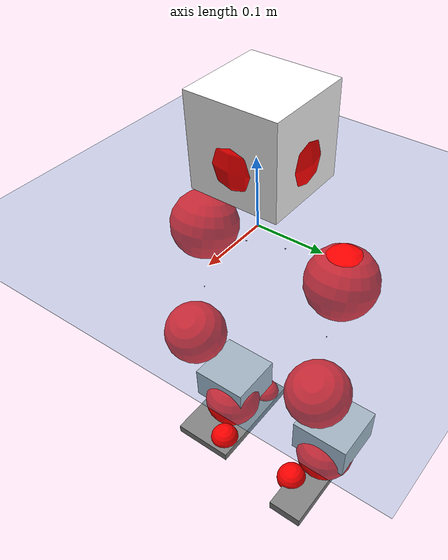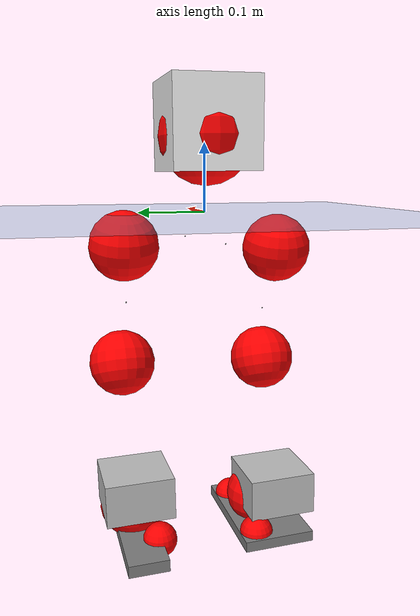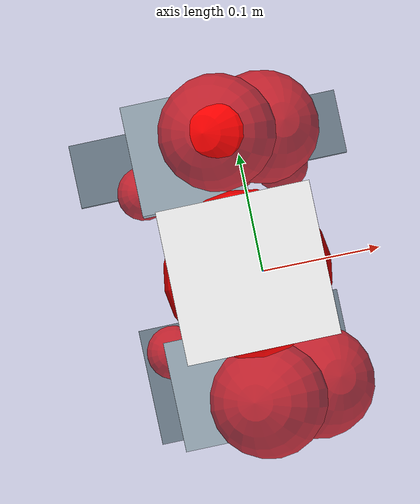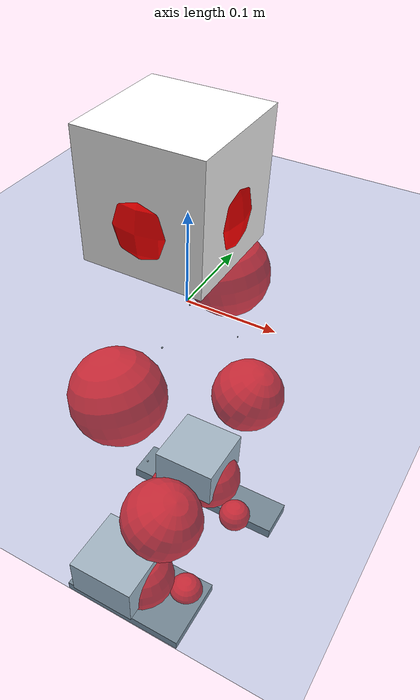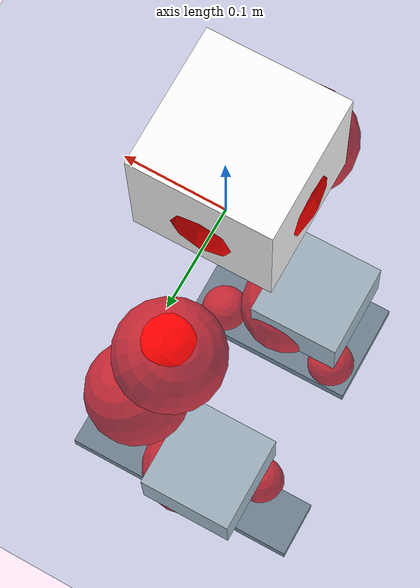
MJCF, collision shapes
<mujoco model="pi_12dof_release_v1">
  <compiler angle="radian" assetdir="assets" balanceinertia="true" inertiafromgeom="false"/>

  <option timestep="0.005" density="1.2" viscosity="2e-05"/>

  <size nkey="1"/>

  <visual>
    <quality shadowsize="8192"/>
    <map shadowclip="0.5"/>
  </visual>

  <default>
    <default class="/">
      <joint armature="0.01" damping="0.01" frictionloss="0.01"/>
      <geom contype="0" conaffinity="0" group="1" solref="-1000 -80"/>
      <site size="0.01 0.005 0.005" group="5"/>
      <general forcelimited="true" biastype="affine" gainprm="20" biasprm="0 -20 -0.5"/>
      <default class="foot">
        <geom size="0.0845 0.036 0.005" type="box" condim="6" group="4" priority="1" friction="0.9 0.2 0.2" solimp="0.015 1 0.005"/>
      </default>
      <default class="reward_collision_sphere">
        <geom group="5" rgba="1 0 0 1"/>
      </default>
    </default>
  </default>

  <asset>
    <texture type="skybox" colorspace="auto" name="//unnamed_texture_0" builtin="gradient" rgb1="0.95 0.95 0.95" rgb2="0.95 0.95 0.95" width="100" height="600"/>
    <texture type="2d" colorspace="auto" name="texplane" builtin="checker" rgb1="0.345 0.575 0.748" rgb2="0.345 0.575 0.748" markrgb="1 1 1" width="512" height="512"/>
    <material name="MatPlane" class="/" texture="texplane" texuniform="true" texrepeat="2 2" specular="0.9"/>
    <mesh name="baselink_1" class="/" file="baselink_1.STL"/>
    <mesh name="r_hip_pitch_link" class="/" file="r_hip_pitch_link.STL"/>
    <mesh name="r_hip_roll_link" class="/" file="r_hip_roll_link.STL"/>
    <mesh name="r_thigh_link" class="/" file="r_thigh_link.STL"/>
    <mesh name="r_calf_link" class="/" file="r_calf_link.STL"/>
    <mesh name="r_ankle_pitch_link" class="/" file="r_ankle_pitch_link.STL"/>
    <mesh name="r_ankle_roll_link" class="/" file="r_ankle_roll_link.STL"/>
    <mesh name="l_hip_pitch_link" class="/" file="l_hip_pitch_link.STL"/>
    <mesh name="l_hip_roll_link" class="/" file="l_hip_roll_link.STL"/>
    <mesh name="l_thigh_link" class="/" file="l_thigh_link.STL"/>
    <mesh name="l_calf_link" class="/" file="l_calf_link.STL"/>
    <mesh name="l_ankle_pitch_link" class="/" file="l_ankle_pitch_link.STL"/>
    <mesh name="l_ankle_roll_link" class="/" file="l_ankle_roll_link.STL"/>
  </asset>

  <worldbody>
    <geom name="floor" class="/" size="100 100 0.125" type="plane" group="0" material="MatPlane"/>
    <light name="toplight_shadow" class="/" pos="0 0 5" dir="0.0990148 0.0990148 -0.990148" type="directional" ambient="0.04 0.04 0.04" diffuse="0.55 0.55 0.55" specular="0.12 0.12 0.12"/>
    <light name="toplight_fill" class="/" pos="0 0 5" dir="0.0990148 0.0990148 -0.990148" type="directional" castshadow="false" ambient="0.04 0.04 0.04" diffuse="0.3 0.3 0.3" specular="0.08 0.08 0.08"/>
    <body name="trunk" pos="-0.0134825 -0.000365266 0.0058314" quat="0.999982 -0.00496362 0.00143152 0.00308221">
      <inertial pos="0.0151044 -0.00566764 0.0602665" quat="0.697532 0.00862218 0.00215899 0.716498" mass="4.90816" diaginertia="0.0075884 0.044421 0.0249101"/>
      <joint name="//unnamed_joint_0" type="free"/>
      <geom name="//unnamed_geom_1" class="/" type="mesh" density="0" rgba="1 1 1 1" mesh="baselink_1"/>
      <geom name="//unnamed_geom_2" class="/" size="0.0637042 0.0637042 0.0637042" pos="0 0 0.117215" type="box" rgba="1 1 1 1"/>
      <geom name="//unnamed_geom_3" class="reward_collision_sphere" size="0.0700746" pos="0 0 0.102563"/>
      <site name="imu" class="/" pos="-0.00072211 -0.033714 -0.0579342" size="0.0127408"/>
      <camera name="track" class="/" pos="0 -2.78951 0" quat="0.707107 0.707107 0 0" mode="trackcom"/>
      <camera name="ego_camera" class="/" pos="0.0721733 0 0.263734" quat="-0.5 -0.5 0.5 0.5"/>
      <body name="r_hip_pitch_link" pos="0.00060657 -0.029181 -0.0532927" quat="0.992296 0.00149749 -0.123861 -0.00222194">
        <inertial pos="-0.00129998 -0.0680917 0.000655445" quat="-0.0196634 0.706249 -0.028714 0.707108" mass="0.798277" diaginertia="7.23218e-05 0.000463005 0.00055847"/>
        <joint name="r_hip_pitch_joint" class="/" pos="0 0 0" axis="-0.0158423 -0.999532 -0.0261861" stiffness="0.0145215" range="-1.62512 1.22542" armature="0.0153119" damping="0" frictionloss="0.00691219"/>
        <geom name="//unnamed_geom_4" class="/" type="mesh" density="0" rgba="0.75294 0.75294 0.75294 1" mesh="r_hip_pitch_link"/>
        <geom name="//unnamed_geom_5" class="/" size="0.000637042 0.000637042 0.000637042" type="box" rgba="0.75294 0.75294 0.75294 1"/>
        <body name="r_hip_roll_link" pos="-0.00583687 -0.0788821 -0.00688724" quat="0.999986 -0.00473474 -0.00243242 -0.00053366">
          <inertial pos="-0.0104936 0.00824497 -0.0772887" quat="0.706622 -0.0789225 -0.0844564 0.698086" mass="0.887845" diaginertia="0.000283559 0.00163974 0.000797369"/>
          <joint name="r_hip_roll_joint" class="/" pos="0 0 0" axis="-0.998948 0.0401356 -0.0221789" stiffness="0.00334895" range="-0.0580846 0.675164" armature="0.0155841" damping="0.0627202" frictionloss="0.00611848"/>
          <geom name="//unnamed_geom_6" class="/" type="mesh" density="0" rgba="0.75294 0.75294 0.75294 1" mesh="r_hip_roll_link"/>
          <geom name="//unnamed_geom_7" class="/" size="0.000637042 0.000637042 0.000637042" type="box" rgba="0.75294 0.75294 0.75294 1"/>
          <geom name="//unnamed_geom_8" class="reward_collision_sphere" size="0.0509634"/>
          <body name="r_thigh_link" pos="-0.000500532 0.0119874 -0.101273" quat="0.999993 -0.000902249 0.00197384 0.00320081">
            <inertial pos="0.0102335 -0.000169251 -0.077942" quat="0.726457 0.686983 -0.00121891 0.0176918" mass="0.225573" diaginertia="9.30543e-05 0.000372344 0.000309467"/>
            <joint name="r_thigh_joint" class="/" pos="0 0 0" axis="0.00268876 0.0108455 -0.999938" stiffness="0.0359575" range="-0.104245 0.446731" armature="0.0169433" damping="0" frictionloss="0.0213778"/>
            <geom name="//unnamed_geom_9" class="/" type="mesh" density="0" rgba="0.75294 0.75294 0.75294 1" mesh="r_thigh_link"/>
            <geom name="//unnamed_geom_10" class="/" size="0.000637042 0.000637042 0.000637042" type="box" rgba="0.75294 0.75294 0.75294 1"/>
            <body name="r_calf_link" pos="-0.000493911 -0.00698983 -0.0907839" quat="0.946786 -0.0037092 0.32184 0.001396">
              <inertial pos="-0.00671843 0.00956419 -0.10459" quat="0.998451 -0.0540535 0.0109767 0.00728756" mass="1.70324" diaginertia="0.00352473 0.020115 0.00140862"/>
              <joint name="r_calf_joint" class="/" pos="0 0 0" axis="0.0168521 -0.998545 -0.0512189" stiffness="0.0537265" range="-1.90971 0.658214" armature="0.0138446" damping="0" frictionloss="0.00674943"/>
              <geom name="//unnamed_geom_11" class="/" type="mesh" density="0" rgba="0.75294 0.75294 0.75294 1" mesh="r_calf_link"/>
              <geom name="//unnamed_geom_12" class="/" size="0.000637042 0.000637042 0.000637042" type="box" rgba="0.75294 0.75294 0.75294 1"/>
              <geom name="//unnamed_geom_13" class="reward_collision_sphere" size="0.0509634"/>
              <body name="r_ankle_pitch_link" pos="0.000918779 0.0133874 -0.204213" quat="0.979979 -0.000258544 -0.199101 0.000118665">
                <inertial pos="-0.00238163 0.0142856 2.25967e-05" quat="-0.0375491 0.702427 -0.00242848 0.71076" mass="0.353551" diaginertia="0.000272922 0.00131845 0.000756448"/>
                <joint name="r_ankle_pitch_joint" class="/" pos="0 0 0" axis="-0.00886469 -0.998144 0.0602443" stiffness="0.00222422" range="-1.41048 0.480967" armature="0.0129592" damping="0.0519076" frictionloss="0.00826615"/>
                <geom name="//unnamed_geom_14" class="/" type="mesh" density="0" rgba="0.75294 0.75294 0.75294 1" mesh="r_ankle_pitch_link"/>
                <geom name="//unnamed_geom_15" class="/" size="0.0496893 0.0509634 0.0318521" type="box" rgba="0.75294 0.75294 0.75294 1"/>
                <body name="r_ankle_roll_link" pos="0.0733372 0.0138748 0.00421591" quat="1 -8.46168e-05 8.0177e-05 1.18341e-05">
                  <inertial pos="-0.024474 0.000852589 -0.0201497" quat="0.553404 0.472643 0.396162 0.559828" mass="1.06331" diaginertia="0.000928025 0.00546123 0.00212998"/>
                  <joint name="r_ankle_roll_joint" class="/" pos="0 0 0" axis="-0.997942 0.0641041 -0.0013362" range="0.0867584 0.164664" armature="0.00556957" damping="0.00572714" frictionloss="0.0118137"/>
                  <geom name="//unnamed_geom_16" class="/" type="mesh" density="0" rgba="0.75294 0.75294 0.75294 1" mesh="r_ankle_roll_link"/>
                  <geom name="//unnamed_geom_17" class="/" type="mesh" rgba="0.75294 0.75294 0.75294 1" mesh="r_ankle_roll_link"/>
                  <geom name="right_foot" class="foot" size="0.0944911 0.053961 0.00796664" pos="-0.0490778 0 -0.0644683"/>
                  <geom name="//unnamed_geom_19" class="reward_collision_sphere" size="0.0509634" pos="-0.0481155 0 -0.0293038"/>
                  <geom name="//unnamed_geom_20" class="reward_collision_sphere" size="0.0254817" pos="0.0144347 0.0278951 -0.0586075"/>
                  <geom name="//unnamed_geom_21" class="reward_collision_sphere" size="0.0254817" pos="-0.115477 0.0278951 -0.0586075"/>
                  <site name="right_foot" class="foot" pos="-0.0490778 0 -0.0644683" size="0.0127408"/>
                </body>
              </body>
            </body>
          </body>
        </body>
      </body>
      <body name="l_hip_pitch_link" pos="-0.00204296 0.0341894 -0.0391978" quat="0.992197 0.000207414 -0.124681 -0.000800391">
        <inertial pos="-0.00373294 0.0633521 0.00875674" quat="0.00721054 0.68641 0.0748834 0.723313" mass="0.664181" diaginertia="0.000103177 0.000532234 0.000565523"/>
        <joint name="l_hip_pitch_joint" class="/" pos="0 0 0" axis="0.029781 0.997788 0.0594356" stiffness="0.0219214" range="-1.33006 1.78039" armature="0.0138037" damping="0" frictionloss="0.0134791"/>
        <geom name="//unnamed_geom_22" class="/" type="mesh" density="0" rgba="0.75294 0.75294 0.75294 1" mesh="l_hip_pitch_link"/>
        <geom name="//unnamed_geom_23" class="/" size="0.000637042 0.000637042 0.000637042" type="box" rgba="0.75294 0.75294 0.75294 1"/>
        <body name="l_hip_roll_link" pos="-0.000825246 0.0901821 -0.0113101" quat="1 3.21142e-05 0.000165026 -0.000404038">
          <inertial pos="4.41344e-05 5.81374e-05 -0.0904515" quat="0.707343 -0.0653022 -0.0924992 0.697743" mass="0.650986" diaginertia="0.000267329 0.00138594 0.000750523"/>
          <joint name="l_hip_roll_joint" class="/" pos="0 0 0" axis="-0.999802 0.0193971 -0.00451536" stiffness="0.0684433" range="-0.487944 -0.0806567" armature="0.0161479" damping="0" frictionloss="0.0153838"/>
          <geom name="//unnamed_geom_24" class="/" type="mesh" density="0" rgba="0.75294 0.75294 0.75294 1" mesh="l_hip_roll_link"/>
          <geom name="//unnamed_geom_25" class="/" size="0.000637042 0.000637042 0.000637042" type="box" rgba="0.75294 0.75294 0.75294 1"/>
          <geom name="//unnamed_geom_26" class="reward_collision_sphere" size="0.0509634"/>
          <body name="l_thigh_link" pos="-0.00121799 -0.00331808 -0.0893721" quat="1 -0.000895376 0.000111436 -0.000400131">
            <inertial pos="0.00422149 -0.0146537 -0.0698271" quat="0.686036 0.72699 0.014411 0.0251531" mass="0.22263" diaginertia="0.000106308 0.000478586 0.00043313"/>
            <joint name="l_thigh_joint" class="/" pos="0 0 0" axis="0.020744 -0.000616607 -0.999785" range="-0.589536 0.125034" armature="0.00900829" damping="0.0623005" frictionloss="0.00862011"/>
            <geom name="//unnamed_geom_27" class="/" type="mesh" density="0" rgba="0.75294 0.75294 0.75294 1" mesh="l_thigh_link"/>
            <geom name="//unnamed_geom_28" class="/" size="0.000637042 0.000637042 0.000637042" type="box" rgba="0.75294 0.75294 0.75294 1"/>
            <body name="l_calf_link" pos="-0.00469533 0.00629272 -0.101694" quat="0.947803 -0.00582246 0.318795 0.00221985">
              <inertial pos="-0.0125859 -0.0037991 -0.0894258" quat="0.998853 0.00398388 -0.00604658 0.0473338" mass="1.71109" diaginertia="0.00289811 0.0184926 0.00119469"/>
              <joint name="l_calf_joint" class="/" pos="0 0 0" axis="-0.000906002 0.999461 0.032818" stiffness="0.0127761" range="-0.633895 1.79639" armature="0.0107672" damping="0.009332" frictionloss="0.019526"/>
              <geom name="//unnamed_geom_29" class="/" type="mesh" density="0" rgba="0.75294 0.75294 0.75294 1" mesh="l_calf_link"/>
              <geom name="//unnamed_geom_30" class="/" size="0.000637042 0.000637042 0.000637042" type="box" rgba="0.75294 0.75294 0.75294 1"/>
              <geom name="//unnamed_geom_31" class="reward_collision_sphere" size="0.0509634"/>
              <body name="l_ankle_pitch_link" pos="0.00297336 -0.000263472 -0.192272" quat="0.979988 0.000542725 -0.199055 -0.000290621">
                <inertial pos="0.00504858 0.000102178 -0.000884578" quat="-0.00648528 0.708458 0.00762588 0.705682" mass="0.413619" diaginertia="0.000258626 0.00105504 0.000823869"/>
                <joint name="l_ankle_pitch_joint" class="/" pos="0 0 0" axis="0.0012062 0.999927 0.0120587" stiffness="0.0349665" range="-0.510065 1.31149" armature="0.0125452" damping="0.0194798" frictionloss="0.00928769"/>
                <geom name="//unnamed_geom_32" class="/" type="mesh" density="0" rgba="0.75294 0.75294 0.75294 1" mesh="l_ankle_pitch_link"/>
                <geom name="//unnamed_geom_33" class="/" size="0.0496893 0.0509634 0.0318521" type="box" rgba="0.75294 0.75294 0.75294 1"/>
                <body name="l_ankle_roll_link" pos="0.070498 0.00118542 -0.00645367" quat="1 0.000209977 -0.000112883 5.00771e-05">
                  <inertial pos="-0.0140133 -0.000508388 -0.0228073" quat="0.572832 0.420833 0.453905 0.53734" mass="1.05289" diaginertia="0.000868169 0.00544628 0.00164501"/>
                  <joint name="l_ankle_roll_joint" class="/" pos="0 0 0" axis="-0.998044 0.0134502 -0.0610439" stiffness="0.0539419" range="-0.18624 0.040199" armature="0.0153418" damping="0" frictionloss="0.0158543"/>
                  <geom name="//unnamed_geom_34" class="/" type="mesh" density="0" rgba="0.75294 0.75294 0.75294 1" mesh="l_ankle_roll_link"/>
                  <geom name="//unnamed_geom_35" class="/" type="mesh" rgba="0.75294 0.75294 0.75294 1" mesh="l_ankle_roll_link"/>
                  <geom name="left_foot" class="foot" size="0.126228 0.0295135 0.00890498" pos="-0.0490778 0 -0.0644683"/>
                  <geom name="//unnamed_geom_37" class="reward_collision_sphere" size="0.0509634" pos="-0.0481155 0 -0.0293038"/>
                  <geom name="//unnamed_geom_38" class="reward_collision_sphere" size="0.0254817" pos="0.0144347 -0.0278951 -0.0586075"/>
                  <geom name="//unnamed_geom_39" class="reward_collision_sphere" size="0.0254817" pos="-0.115477 -0.0278951 -0.0586075"/>
                  <site name="left_foot" class="foot" pos="-0.0490778 0 -0.0644683" size="0.0127408"/>
                </body>
              </body>
            </body>
          </body>
        </body>
      </body>
    </body>
  </worldbody>

  <contact>
    <pair class="/" geom1="floor" geom2="right_foot" name="//unnamed_contact_1"/>
    <pair class="/" geom1="floor" geom2="left_foot" name="//unnamed_contact_0"/>
  </contact>

  <actuator>
    <general name="r_hip_pitch_joint" class="/" joint="r_hip_pitch_joint" forcerange="-25.4587 25.4587" gainprm="26.1955" biasprm="0 -26.1955 -0.558281"/>
    <general name="r_hip_roll_joint" class="/" joint="r_hip_roll_joint" forcerange="-19.2818 19.2818" gainprm="26.1955" biasprm="0 -26.1955 -0.558281"/>
    <general name="r_thigh_joint" class="/" joint="r_thigh_joint" forcerange="-28.1753 28.1753" gainprm="26.1955" biasprm="0 -26.1955 -0.558281"/>
    <general name="r_calf_joint" class="/" joint="r_calf_joint" forcerange="-13.4984 13.4984" gainprm="26.1955" biasprm="0 -26.1955 -0.558281"/>
    <general name="r_ankle_pitch_joint" class="/" joint="r_ankle_pitch_joint" forcerange="-24.93 24.93" gainprm="26.1955" biasprm="0 -26.1955 -0.558281"/>
    <general name="r_ankle_roll_joint" class="/" joint="r_ankle_roll_joint" forcerange="-38.3867 38.3867" gainprm="26.1955" biasprm="0 -26.1955 -0.558281"/>
    <general name="l_hip_pitch_joint" class="/" joint="l_hip_pitch_joint" forcerange="-27.4331 27.4331" gainprm="26.1955" biasprm="0 -26.1955 -0.558281"/>
    <general name="l_hip_roll_joint" class="/" joint="l_hip_roll_joint" forcerange="-33.3426 33.3426" gainprm="26.1955" biasprm="0 -26.1955 -0.558281"/>
    <general name="l_thigh_joint" class="/" joint="l_thigh_joint" forcerange="-27.4188 27.4188" gainprm="26.1955" biasprm="0 -26.1955 -0.558281"/>
    <general name="l_calf_joint" class="/" joint="l_calf_joint" forcerange="-25.9427 25.9427" gainprm="26.1955" biasprm="0 -26.1955 -0.558281"/>
    <general name="l_ankle_pitch_joint" class="/" joint="l_ankle_pitch_joint" forcerange="-20.2797 20.2797" gainprm="26.1955" biasprm="0 -26.1955 -0.558281"/>
    <general name="l_ankle_roll_joint" class="/" joint="l_ankle_roll_joint" forcerange="-25.1144 25.1144" gainprm="26.1955" biasprm="0 -26.1955 -0.558281"/>
  </actuator>

  <sensor>
    <gyro site="imu" name="imu_angular_velocity"/>
    <velocimeter site="imu" name="imu_linear_velocity"/>
    <framelinvel objtype="site" objname="left_foot" name="left_foot_global_linear_velocity"/>
    <framelinvel objtype="site" objname="right_foot" name="right_foot_global_linear_velocity"/>
  </sensor>

  <keyframe>
    <key name="home" qpos="0 0 0.291 1 0 0 0 0.4 0 0 -0.8 0.4 0 -0.4 0 0 0.8 -0.4 0"/>
  </keyframe>
</mujoco>
